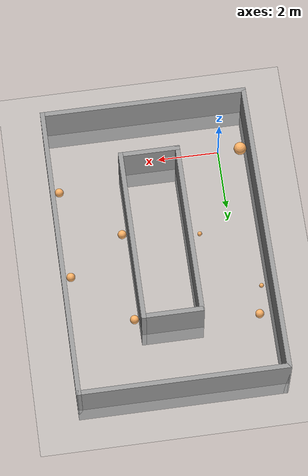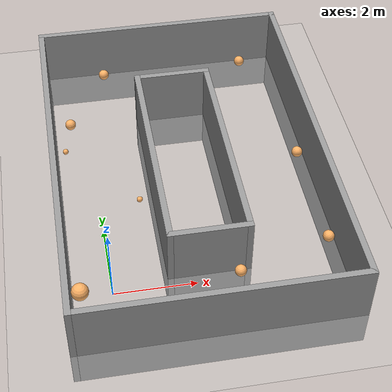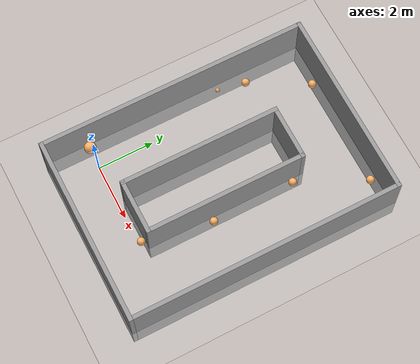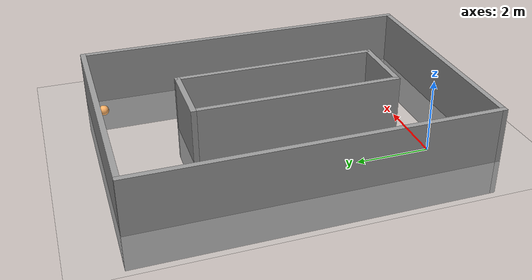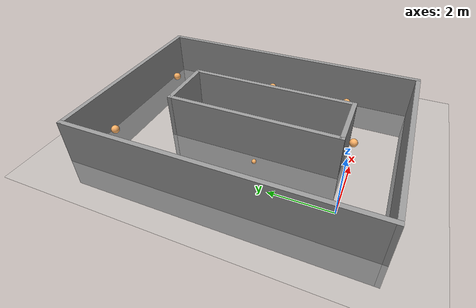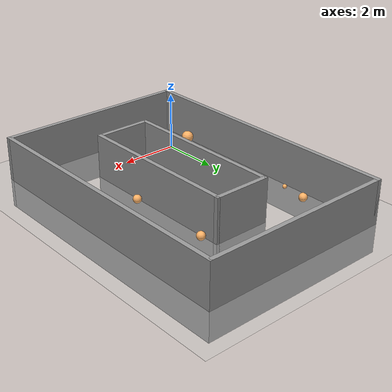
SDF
<sdf version="1.7">
 <world name="default">
  <light name="sun" type="directional">
   <pose>0 0 10 0 -0 0</pose>
   <diffuse>0.8 0.8 0.8 1</diffuse>
   <specular>0.2 0.2 0.2 1</specular>
   <attenuation>
    <range>1000</range>
    <constant>0.9</constant>
    <linear>0.01</linear>
    <quadratic>0.001</quadratic>
   </attenuation>
   <direction>-0.5 0.1 -0.9</direction>
   <spot><inner_angle>0</inner_angle><outer_angle>0</outer_angle><falloff>0</falloff></spot>
  </light>
  <model name="ground_plane">
   <static>1</static>
   <link name="link">
    <collision name="collision">
     <geometry><plane><normal>0 0 1</normal><size>100 100</size></plane></geometry>
     <surface>
      <contact><collide_bitmask>65535</collide_bitmask></contact>
      <friction><ode><mu>100</mu><mu2>50</mu2></ode></friction>
     </surface>
    </collision>
    <visual name="visual">
     <cast_shadows>0</cast_shadows>
     <geometry><plane><normal>0 0 1</normal><size>100 100</size></plane></geometry>
     <material>
      <script><uri>file://media/materials/scripts/gazebo.material</uri><name>Gazebo/Grey</name></script>
     </material>
    </visual>
   </link>
  </model>
  <gravity>0 0 -9.8</gravity>
  <magnetic_field>6e-06 2.3e-05 -4.2e-05</magnetic_field>
  <atmosphere type="adiabatic"/>
  <physics type="ode">
   <max_step_size>0.001</max_step_size>
   <real_time_factor>1</real_time_factor>
   <real_time_update_rate>1000</real_time_update_rate>
  </physics>
  <scene><ambient>0.4 0.4 0.4 1</ambient><background>0.7 0.7 0.7 1</background><shadows>1</shadows></scene>
  <spherical_coordinates>
   <surface_model>EARTH_WGS84</surface_model>
   <latitude_deg>0</latitude_deg>
   <longitude_deg>0</longitude_deg>
   <elevation>0</elevation>
   <heading_deg>0</heading_deg>
  </spherical_coordinates>
  <model name="task4_wall">
   <pose>2.28 3.35 -1 0 -0 0</pose>
   <link name="Wall_0">
    <collision name="Wall_0_Collision">
     <geometry><box><size>9.75 0.15 2.5</size></box></geometry>
     <pose>0 0 1.25 0 -0 0</pose>
    </collision>
    <visual name="Wall_0_Visual">
     <pose>0 0 1.25 0 -0 0</pose>
     <geometry><box><size>9.75 0.15 2.5</size></box></geometry>
     <material>
      <script><uri>file://media/materials/scripts/gazebo.material</uri><name>Gazebo/Grey</name></script>
      <ambient>1 1 1 1</ambient>
     </material>
     <meta><layer>0</layer></meta>
    </visual>
    <pose>-3.3 0 0 0 -0 1.5708</pose>
   </link>
   <link name="Wall_1">
    <collision name="Wall_1_Collision">
     <geometry><box><size>6.75 0.15 2.5</size></box></geometry>
     <pose>0 0 1.25 0 -0 0</pose>
    </collision>
    <visual name="Wall_1_Visual">
     <pose>0 0 1.25 0 -0 0</pose>
     <geometry><box><size>6.75 0.15 2.5</size></box></geometry>
     <material>
      <script><uri>file://media/materials/scripts/gazebo.material</uri><name>Gazebo/Grey</name></script>
      <ambient>1 1 1 1</ambient>
     </material>
     <meta><layer>0</layer></meta>
    </visual>
    <pose>-0 4.8 0 0 -0 0</pose>
   </link>
   <link name="Wall_2">
    <collision name="Wall_2_Collision">
     <geometry><box><size>9.75 0.15 2.5</size></box></geometry>
     <pose>0 0 1.25 0 -0 0</pose>
    </collision>
    <visual name="Wall_2_Visual">
     <pose>0 0 1.25 0 -0 0</pose>
     <geometry><box><size>9.75 0.15 2.5</size></box></geometry>
     <material>
      <script><uri>file://media/materials/scripts/gazebo.material</uri><name>Gazebo/Grey</name></script>
      <ambient>1 1 1 1</ambient>
     </material>
     <meta><layer>0</layer></meta>
    </visual>
    <pose>3.3 0 0 0 -0 -1.5708</pose>
   </link>
   <link name="Wall_3">
    <collision name="Wall_3_Collision">
     <geometry><box><size>6.75 0.15 2.5</size></box></geometry>
     <pose>0 0 1.25 0 -0 0</pose>
    </collision>
    <visual name="Wall_3_Visual">
     <pose>0 0 1.25 0 -0 0</pose>
     <geometry><box><size>6.75 0.15 2.5</size></box></geometry>
     <material>
      <script><uri>file://media/materials/scripts/gazebo.material</uri><name>Gazebo/Grey</name></script>
      <ambient>1 1 1 1</ambient>
     </material>
     <meta><layer>0</layer></meta>
    </visual>
    <pose>-0 -4.8 0 0 -0 3.14159</pose>
   </link>
   <link name="Wall_5">
    <collision name="Wall_5_Collision">
     <geometry><box><size>5.75 0.15 2.5</size></box></geometry>
     <pose>0 0 1.25 0 -0 0</pose>
    </collision>
    <visual name="Wall_5_Visual">
     <pose>0 0 1.25 0 -0 0</pose>
     <geometry><box><size>5.75 0.15 2.5</size></box></geometry>
     <material>
      <script><uri>file://media/materials/scripts/gazebo.material</uri><name>Gazebo/Grey</name></script>
      <ambient>1 1 1 1</ambient>
     </material>
     <meta><layer>0</layer></meta>
    </visual>
    <pose>-0.880514 -0.236952 0 0 -0 -1.5708</pose>
   </link>
   <link name="Wall_6">
    <collision name="Wall_6_Collision">
     <geometry><box><size>2 0.15 2.5</size></box></geometry>
     <pose>0 0 1.25 0 -0 0</pose>
    </collision>
    <visual name="Wall_6_Visual">
     <pose>0 0 1.25 0 -0 0</pose>
     <geometry><box><size>2 0.15 2.5</size></box></geometry>
     <material>
      <script><uri>file://media/materials/scripts/gazebo.material</uri><name>Gazebo/Grey</name></script>
      <ambient>1 1 1 1</ambient>
     </material>
     <meta><layer>0</layer></meta>
    </visual>
    <pose>0.044486 -3.03695 0 0 -0 0</pose>
   </link>
   <link name="Wall_7">
    <collision name="Wall_7_Collision">
     <geometry><box><size>5.75 0.15 2.5</size></box></geometry>
     <pose>0 0 1.25 0 -0 0</pose>
    </collision>
    <visual name="Wall_7_Visual">
     <pose>0 0 1.25 0 -0 0</pose>
     <geometry><box><size>5.75 0.15 2.5</size></box></geometry>
     <material>
      <script><uri>file://media/materials/scripts/gazebo.material</uri><name>Gazebo/Grey</name></script>
      <ambient>1 1 1 1</ambient>
     </material>
     <meta><layer>0</layer></meta>
    </visual>
    <pose>0.969486 -0.236952 0 0 -0 1.5708</pose>
   </link>
   <link name="Wall_8">
    <collision name="Wall_8_Collision">
     <geometry><box><size>2 0.15 2.5</size></box></geometry>
     <pose>0 0 1.25 0 -0 0</pose>
    </collision>
    <visual name="Wall_8_Visual">
     <pose>0 0 1.25 0 -0 0</pose>
     <geometry><box><size>2 0.15 2.5</size></box></geometry>
     <material>
      <script><uri>file://media/materials/scripts/gazebo.material</uri><name>Gazebo/Grey</name></script>
      <ambient>1 1 1 1</ambient>
     </material>
     <meta><layer>0</layer></meta>
    </visual>
    <pose>0.044486 2.56305 0 0 -0 3.14159</pose>
   </link>
   <static>1</static>
  </model>
  <model name="a_reall_ball02">
   <link name="link">
    <inertial>
     <mass>0.0445585</mass>
     <inertia>
      <ixx>9.78725e-05</ixx>
      <ixy>0</ixy>
      <ixz>0</ixz>
      <iyy>9.78725e-05</iyy>
      <iyz>0</iyz>
      <izz>9.78725e-05</izz>
     </inertia>
    </inertial>
    <pose>-0 -0 0.136953 0 -0 0</pose>
    <visual name="visual">
     <geometry><sphere><radius>0.0741029</radius></sphere></geometry>
     <material>
      <script><name>Gazebo/Grey</name><uri>file://media/materials/scripts/gazebo.material</uri></script>
      <shader type="pixel"><normal_map>__default__</normal_map></shader>
      <ambient>1 0.7 0.4 0</ambient>
      <diffuse>0.7 0.7 0.7 1</diffuse>
      <specular>0.01 0.01 0.01 1</specular>
      <emissive>0 0 0 1</emissive>
     </material>
    </visual>
    <collision name="collision">
     <geometry><sphere><radius>0.074103</radius></sphere></geometry>
     <surface>
      <friction>
       <ode><mu>1</mu><mu2>1</mu2><fdir1>0 0 0</fdir1><slip1>0</slip1><slip2>0</slip2></ode>
       <torsional>
        <coefficient>1</coefficient>
        <patch_radius>0</patch_radius>
        <surface_radius>0</surface_radius>
        <use_patch_radius>1</use_patch_radius>
        <ode><slip>0</slip></ode>
       </torsional>
      </friction>
      <bounce><restitution_coefficient>0</restitution_coefficient><threshold>1e+06</threshold></bounce>
      <contact>
       <collide_without_contact>0</collide_without_contact>
       <collide_without_contact_bitmask>1</collide_without_contact_bitmask>
       <collide_bitmask>1</collide_bitmask>
       <ode>
        <soft_cfm>0</soft_cfm>
        <soft_erp>0.2</soft_erp>
        <kp>1e+13</kp>
        <kd>1</kd>
        <max_vel>0.01</max_vel>
        <min_depth>0</min_depth>
       </ode>
       <bullet>
        <split_impulse>1</split_impulse>
        <split_impulse_penetration_threshold>-0.01</split_impulse_penetration_threshold>
        <soft_cfm>0</soft_cfm>
        <soft_erp>0.2</soft_erp>
        <kp>1e+13</kp>
        <kd>1</kd>
       </bullet>
      </contact>
     </surface>
    </collision>
   </link>
   <static>0</static>
   <pose>-0.70904 4.86688 -0.06285 0 -0 0</pose>
  </model>
  <model name="a_reall_ball">
   <link name="link">
    <inertial>
     <mass>0.318333</mass>
     <inertia>
      <ixx>0.00259372</ixx>
      <ixy>0</ixy>
      <ixz>0</ixz>
      <iyy>0.00259372</iyy>
      <iyz>0</iyz>
      <izz>0.00259372</izz>
     </inertia>
    </inertial>
    <pose>0 0 0.136953 0 -0 0</pose>
    <visual name="visual">
     <geometry><sphere><radius>0.142722</radius></sphere></geometry>
     <material>
      <script><name>Gazebo/Grey</name><uri>file://media/materials/scripts/gazebo.material</uri></script>
      <shader type="pixel"><normal_map>__default__</normal_map></shader>
      <ambient>1 0.7 0.4 0</ambient>
      <diffuse>0.7 0.7 0.7 1</diffuse>
      <specular>0.01 0.01 0.01 1</specular>
      <emissive>0 0 0 1</emissive>
     </material>
    </visual>
    <collision name="collision">
     <geometry><sphere><radius>0.142722</radius></sphere></geometry>
     <surface>
      <friction>
       <ode><mu>1</mu><mu2>1</mu2><fdir1>0 0 0</fdir1><slip1>0</slip1><slip2>0</slip2></ode>
       <torsional>
        <coefficient>1</coefficient>
        <patch_radius>0</patch_radius>
        <surface_radius>0</surface_radius>
        <use_patch_radius>1</use_patch_radius>
        <ode><slip>0</slip></ode>
       </torsional>
      </friction>
      <bounce><restitution_coefficient>0</restitution_coefficient><threshold>1e+06</threshold></bounce>
      <contact>
       <collide_without_contact>0</collide_without_contact>
       <collide_without_contact_bitmask>1</collide_without_contact_bitmask>
       <collide_bitmask>1</collide_bitmask>
       <ode>
        <soft_cfm>0</soft_cfm>
        <soft_erp>0.2</soft_erp>
        <kp>1e+13</kp>
        <kd>1</kd>
        <max_vel>0.01</max_vel>
        <min_depth>0</min_depth>
       </ode>
       <bullet>
        <split_impulse>1</split_impulse>
        <split_impulse_penetration_threshold>-0.01</split_impulse_penetration_threshold>
        <soft_cfm>0</soft_cfm>
        <soft_erp>0.2</soft_erp>
        <kp>1e+13</kp>
        <kd>1</kd>
       </bullet>
      </contact>
     </surface>
    </collision>
   </link>
   <static>0</static>
   <pose>-0.497662 5.83984 0.005769 0 -0 0</pose>
  </model>
  <model name="a_reall_ball_0">
   <link name="link">
    <inertial>
     <mass>0.318333</mass>
     <inertia>
      <ixx>0.00259372</ixx>
      <ixy>0</ixy>
      <ixz>0</ixz>
      <iyy>0.00259372</iyy>
      <iyz>0</iyz>
      <izz>0.00259372</izz>
     </inertia>
    </inertial>
    <pose>0 0 0.136953 0 -0 0</pose>
    <visual name="visual">
     <geometry><sphere><radius>0.142722</radius></sphere></geometry>
     <material>
      <script><name>Gazebo/Grey</name><uri>file://media/materials/scripts/gazebo.material</uri></script>
      <shader type="pixel"><normal_map>__default__</normal_map></shader>
      <ambient>1 0.7 0.4 0</ambient>
      <diffuse>0.7 0.7 0.7 1</diffuse>
      <specular>0.01 0.01 0.01 1</specular>
      <emissive>0 0 0 1</emissive>
     </material>
    </visual>
    <collision name="collision">
     <geometry><sphere><radius>0.142722</radius></sphere></geometry>
     <surface>
      <friction>
       <ode><mu>1</mu><mu2>1</mu2><fdir1>0 0 0</fdir1><slip1>0</slip1><slip2>0</slip2></ode>
       <torsional>
        <coefficient>1</coefficient>
        <patch_radius>0</patch_radius>
        <surface_radius>0</surface_radius>
        <use_patch_radius>1</use_patch_radius>
        <ode><slip>0</slip></ode>
       </torsional>
      </friction>
      <bounce><restitution_coefficient>0</restitution_coefficient><threshold>1e+06</threshold></bounce>
      <contact>
       <collide_without_contact>0</collide_without_contact>
       <collide_without_contact_bitmask>1</collide_without_contact_bitmask>
       <collide_bitmask>1</collide_bitmask>
       <ode>
        <soft_cfm>0</soft_cfm>
        <soft_erp>0.2</soft_erp>
        <kp>1e+13</kp>
        <kd>1</kd>
        <max_vel>0.01</max_vel>
        <min_depth>0</min_depth>
       </ode>
       <bullet>
        <split_impulse>1</split_impulse>
        <split_impulse_penetration_threshold>-0.01</split_impulse_penetration_threshold>
        <soft_cfm>0</soft_cfm>
        <soft_erp>0.2</soft_erp>
        <kp>1e+13</kp>
        <kd>1</kd>
       </bullet>
      </contact>
     </surface>
    </collision>
   </link>
   <static>0</static>
   <pose>0.61996 7.84886 0.005769 0 -0 0</pose>
  </model>
  <model name="a_reall_ball_1">
   <link name="link">
    <inertial>
     <mass>0.318333</mass>
     <inertia>
      <ixx>0.00259372</ixx>
      <ixy>0</ixy>
      <ixz>0</ixz>
      <iyy>0.00259372</iyy>
      <iyz>0</iyz>
      <izz>0.00259372</izz>
     </inertia>
    </inertial>
    <pose>0 0 0.136953 0 -0 0</pose>
    <visual name="visual">
     <geometry><sphere><radius>0.142722</radius></sphere></geometry>
     <material>
      <script><name>Gazebo/Grey</name><uri>file://media/materials/scripts/gazebo.material</uri></script>
      <shader type="pixel"><normal_map>__default__</normal_map></shader>
      <ambient>1 0.7 0.4 0</ambient>
      <diffuse>0.7 0.7 0.7 1</diffuse>
      <specular>0.01 0.01 0.01 1</specular>
      <emissive>0 0 0 1</emissive>
     </material>
    </visual>
    <collision name="collision">
     <geometry><sphere><radius>0.142722</radius></sphere></geometry>
     <surface>
      <friction>
       <ode><mu>1</mu><mu2>1</mu2><fdir1>0 0 0</fdir1><slip1>0</slip1><slip2>0</slip2></ode>
       <torsional>
        <coefficient>1</coefficient>
        <patch_radius>0</patch_radius>
        <surface_radius>0</surface_radius>
        <use_patch_radius>1</use_patch_radius>
        <ode><slip>0</slip></ode>
       </torsional>
      </friction>
      <bounce><restitution_coefficient>0</restitution_coefficient><threshold>1e+06</threshold></bounce>
      <contact>
       <collide_without_contact>0</collide_without_contact>
       <collide_without_contact_bitmask>1</collide_without_contact_bitmask>
       <collide_bitmask>1</collide_bitmask>
       <ode>
        <soft_cfm>0</soft_cfm>
        <soft_erp>0.2</soft_erp>
        <kp>1e+13</kp>
        <kd>1</kd>
        <max_vel>0.01</max_vel>
        <min_depth>0</min_depth>
       </ode>
       <bullet>
        <split_impulse>1</split_impulse>
        <split_impulse_penetration_threshold>-0.01</split_impulse_penetration_threshold>
        <soft_cfm>0</soft_cfm>
        <soft_erp>0.2</soft_erp>
        <kp>1e+13</kp>
        <kd>1</kd>
       </bullet>
      </contact>
     </surface>
    </collision>
   </link>
   <static>0</static>
   <pose>4.62242 7.83557 0.005769 0 -0 0</pose>
  </model>
  <model name="a_reall_ball_2">
   <link name="link">
    <inertial>
     <mass>0.318333</mass>
     <inertia>
      <ixx>0.00259372</ixx>
      <ixy>0</ixy>
      <ixz>0</ixz>
      <iyy>0.00259372</iyy>
      <iyz>0</iyz>
      <izz>0.00259372</izz>
     </inertia>
    </inertial>
    <pose>0 0 0.136953 0 -0 0</pose>
    <visual name="visual">
     <geometry><sphere><radius>0.142722</radius></sphere></geometry>
     <material>
      <script><name>Gazebo/Grey</name><uri>file://media/materials/scripts/gazebo.material</uri></script>
      <shader type="pixel"><normal_map>__default__</normal_map></shader>
      <ambient>1 0.7 0.4 0</ambient>
      <diffuse>0.7 0.7 0.7 1</diffuse>
      <specular>0.01 0.01 0.01 1</specular>
      <emissive>0 0 0 1</emissive>
     </material>
    </visual>
    <collision name="collision">
     <geometry><sphere><radius>0.142722</radius></sphere></geometry>
     <surface>
      <friction>
       <ode><mu>1</mu><mu2>1</mu2><fdir1>0 0 0</fdir1><slip1>0</slip1><slip2>0</slip2></ode>
       <torsional>
        <coefficient>1</coefficient>
        <patch_radius>0</patch_radius>
        <surface_radius>0</surface_radius>
        <use_patch_radius>1</use_patch_radius>
        <ode><slip>0</slip></ode>
       </torsional>
      </friction>
      <bounce><restitution_coefficient>0</restitution_coefficient><threshold>1e+06</threshold></bounce>
      <contact>
       <collide_without_contact>0</collide_without_contact>
       <collide_without_contact_bitmask>1</collide_without_contact_bitmask>
       <collide_bitmask>1</collide_bitmask>
       <ode>
        <soft_cfm>0</soft_cfm>
        <soft_erp>0.2</soft_erp>
        <kp>1e+13</kp>
        <kd>1</kd>
        <max_vel>0.01</max_vel>
        <min_depth>0</min_depth>
       </ode>
       <bullet>
        <split_impulse>1</split_impulse>
        <split_impulse_penetration_threshold>-0.01</split_impulse_penetration_threshold>
        <soft_cfm>0</soft_cfm>
        <soft_erp>0.2</soft_erp>
        <kp>1e+13</kp>
        <kd>1</kd>
       </bullet>
      </contact>
     </surface>
    </collision>
   </link>
   <static>0</static>
   <pose>3.4957 5.49774 0.005769 0 -0 0</pose>
  </model>
  <model name="a_reall_ball_3">
   <link name="link">
    <inertial>
     <mass>0.318333</mass>
     <inertia>
      <ixx>0.00259372</ixx>
      <ixy>0</ixy>
      <ixz>0</ixz>
      <iyy>0.00259372</iyy>
      <iyz>0</iyz>
      <izz>0.00259372</izz>
     </inertia>
    </inertial>
    <pose>0 0 0.136953 0 -0 0</pose>
    <visual name="visual">
     <geometry><sphere><radius>0.142722</radius></sphere></geometry>
     <material>
      <script><name>Gazebo/Grey</name><uri>file://media/materials/scripts/gazebo.material</uri></script>
      <shader type="pixel"><normal_map>__default__</normal_map></shader>
      <ambient>1 0.7 0.4 0</ambient>
      <diffuse>0.7 0.7 0.7 1</diffuse>
      <specular>0.01 0.01 0.01 1</specular>
      <emissive>0 0 0 1</emissive>
     </material>
    </visual>
    <collision name="collision">
     <geometry><sphere><radius>0.142722</radius></sphere></geometry>
     <surface>
      <friction>
       <ode><mu>1</mu><mu2>1</mu2><fdir1>0 0 0</fdir1><slip1>0</slip1><slip2>0</slip2></ode>
       <torsional>
        <coefficient>1</coefficient>
        <patch_radius>0</patch_radius>
        <surface_radius>0</surface_radius>
        <use_patch_radius>1</use_patch_radius>
        <ode><slip>0</slip></ode>
       </torsional>
      </friction>
      <bounce><restitution_coefficient>0</restitution_coefficient><threshold>1e+06</threshold></bounce>
      <contact>
       <collide_without_contact>0</collide_without_contact>
       <collide_without_contact_bitmask>1</collide_without_contact_bitmask>
       <collide_bitmask>1</collide_bitmask>
       <ode>
        <soft_cfm>0</soft_cfm>
        <soft_erp>0.2</soft_erp>
        <kp>1e+13</kp>
        <kd>1</kd>
        <max_vel>0.01</max_vel>
        <min_depth>0</min_depth>
       </ode>
       <bullet>
        <split_impulse>1</split_impulse>
        <split_impulse_penetration_threshold>-0.01</split_impulse_penetration_threshold>
        <soft_cfm>0</soft_cfm>
        <soft_erp>0.2</soft_erp>
        <kp>1e+13</kp>
        <kd>1</kd>
       </bullet>
      </contact>
     </surface>
    </collision>
   </link>
   <static>0</static>
   <pose>5.33714 3.78014 0.005769 0 -0 0</pose>
  </model>
  <model name="a_reall_ball_4">
   <link name="link">
    <inertial>
     <mass>0.318333</mass>
     <inertia>
      <ixx>0.00259372</ixx>
      <ixy>0</ixy>
      <ixz>0</ixz>
      <iyy>0.00259372</iyy>
      <iyz>0</iyz>
      <izz>0.00259372</izz>
     </inertia>
    </inertial>
    <pose>0 0 0.136953 0 -0 0</pose>
    <visual name="visual">
     <geometry><sphere><radius>0.142722</radius></sphere></geometry>
     <material>
      <script><name>Gazebo/Grey</name><uri>file://media/materials/scripts/gazebo.material</uri></script>
      <shader type="pixel"><normal_map>__default__</normal_map></shader>
      <ambient>1 0.7 0.4 0</ambient>
      <diffuse>0.7 0.7 0.7 1</diffuse>
      <specular>0.01 0.01 0.01 1</specular>
      <emissive>0 0 0 1</emissive>
     </material>
    </visual>
    <collision name="collision">
     <geometry><sphere><radius>0.142722</radius></sphere></geometry>
     <surface>
      <friction>
       <ode><mu>1</mu><mu2>1</mu2><fdir1>0 0 0</fdir1><slip1>0</slip1><slip2>0</slip2></ode>
       <torsional>
        <coefficient>1</coefficient>
        <patch_radius>0</patch_radius>
        <surface_radius>0</surface_radius>
        <use_patch_radius>1</use_patch_radius>
        <ode><slip>0</slip></ode>
       </torsional>
      </friction>
      <bounce><restitution_coefficient>0</restitution_coefficient><threshold>1e+06</threshold></bounce>
      <contact>
       <collide_without_contact>0</collide_without_contact>
       <collide_without_contact_bitmask>1</collide_without_contact_bitmask>
       <collide_bitmask>1</collide_bitmask>
       <ode>
        <soft_cfm>0</soft_cfm>
        <soft_erp>0.2</soft_erp>
        <kp>1e+13</kp>
        <kd>1</kd>
        <max_vel>0.01</max_vel>
        <min_depth>0</min_depth>
       </ode>
       <bullet>
        <split_impulse>1</split_impulse>
        <split_impulse_penetration_threshold>-0.01</split_impulse_penetration_threshold>
        <soft_cfm>0</soft_cfm>
        <soft_erp>0.2</soft_erp>
        <kp>1e+13</kp>
        <kd>1</kd>
       </bullet>
      </contact>
     </surface>
    </collision>
   </link>
   <static>0</static>
   <pose>3.50836 2.52737 0.005769 0 -0 0</pose>
  </model>
  <model name="a_reall_ball_5">
   <link name="link">
    <inertial>
     <mass>0.318333</mass>
     <inertia>
      <ixx>0.00259372</ixx>
      <ixy>0</ixy>
      <ixz>0</ixz>
      <iyy>0.00259372</iyy>
      <iyz>0</iyz>
      <izz>0.00259372</izz>
     </inertia>
    </inertial>
    <pose>0 0 0.136953 0 -0 0</pose>
    <visual name="visual">
     <geometry><sphere><radius>0.142722</radius></sphere></geometry>
     <material>
      <script><name>Gazebo/Grey</name><uri>file://media/materials/scripts/gazebo.material</uri></script>
      <shader type="pixel"><normal_map>__default__</normal_map></shader>
      <ambient>1 0.7 0.4 0</ambient>
      <diffuse>0.7 0.7 0.7 1</diffuse>
      <specular>0.01 0.01 0.01 1</specular>
      <emissive>0 0 0 1</emissive>
     </material>
    </visual>
    <collision name="collision">
     <geometry><sphere><radius>0.142722</radius></sphere></geometry>
     <surface>
      <friction>
       <ode><mu>1</mu><mu2>1</mu2><fdir1>0 0 0</fdir1><slip1>0</slip1><slip2>0</slip2></ode>
       <torsional>
        <coefficient>1</coefficient>
        <patch_radius>0</patch_radius>
        <surface_radius>0</surface_radius>
        <use_patch_radius>1</use_patch_radius>
        <ode><slip>0</slip></ode>
       </torsional>
      </friction>
      <bounce><restitution_coefficient>0</restitution_coefficient><threshold>1e+06</threshold></bounce>
      <contact>
       <collide_without_contact>0</collide_without_contact>
       <collide_without_contact_bitmask>1</collide_without_contact_bitmask>
       <collide_bitmask>1</collide_bitmask>
       <ode>
        <soft_cfm>0</soft_cfm>
        <soft_erp>0.2</soft_erp>
        <kp>1e+13</kp>
        <kd>1</kd>
        <max_vel>0.01</max_vel>
        <min_depth>0</min_depth>
       </ode>
       <bullet>
        <split_impulse>1</split_impulse>
        <split_impulse_penetration_threshold>-0.01</split_impulse_penetration_threshold>
        <soft_cfm>0</soft_cfm>
        <soft_erp>0.2</soft_erp>
        <kp>1e+13</kp>
        <kd>1</kd>
       </bullet>
      </contact>
     </surface>
    </collision>
   </link>
   <static>0</static>
   <pose>5.40635 0.785981 0.016787 -2e-06 -0.403864 -0</pose>
  </model>
  <model name="a_reall_ball_6">
   <link name="link">
    <inertial>
     <mass>0.318333</mass>
     <inertia>
      <ixx>0.00259372</ixx>
      <ixy>0</ixy>
      <ixz>0</ixz>
      <iyy>0.00259372</iyy>
      <iyz>0</iyz>
      <izz>0.00259372</izz>
     </inertia>
    </inertial>
    <pose>0 0 0.136953 0 -0 0</pose>
    <visual name="visual">
     <geometry><sphere><radius>0.142722</radius></sphere></geometry>
     <material>
      <script><name>Gazebo/Grey</name><uri>file://media/materials/scripts/gazebo.material</uri></script>
      <shader type="pixel"><normal_map>__default__</normal_map></shader>
      <ambient>1 0.7 0.4 0</ambient>
      <diffuse>0.7 0.7 0.7 1</diffuse>
      <specular>0.01 0.01 0.01 1</specular>
      <emissive>0 0 0 1</emissive>
     </material>
    </visual>
    <collision name="collision">
     <geometry><sphere><radius>0.142722</radius></sphere></geometry>
     <surface>
      <friction>
       <ode><mu>1</mu><mu2>1</mu2><fdir1>0 0 0</fdir1><slip1>0</slip1><slip2>0</slip2></ode>
       <torsional>
        <coefficient>1</coefficient>
        <patch_radius>0</patch_radius>
        <surface_radius>0</surface_radius>
        <use_patch_radius>1</use_patch_radius>
        <ode><slip>0</slip></ode>
       </torsional>
      </friction>
      <bounce><restitution_coefficient>0</restitution_coefficient><threshold>1e+06</threshold></bounce>
      <contact>
       <collide_without_contact>0</collide_without_contact>
       <collide_without_contact_bitmask>1</collide_without_contact_bitmask>
       <collide_bitmask>1</collide_bitmask>
       <ode>
        <soft_cfm>0</soft_cfm>
        <soft_erp>0.2</soft_erp>
        <kp>1e+13</kp>
        <kd>1</kd>
        <max_vel>0.01</max_vel>
        <min_depth>0</min_depth>
       </ode>
       <bullet>
        <split_impulse>1</split_impulse>
        <split_impulse_penetration_threshold>-0.01</split_impulse_penetration_threshold>
        <soft_cfm>0</soft_cfm>
        <soft_erp>0.2</soft_erp>
        <kp>1e+13</kp>
        <kd>1</kd>
       </bullet>
      </contact>
     </surface>
    </collision>
   </link>
   <static>0</static>
   <pose>3.03344 0.092016 0.005769 0 -0 0</pose>
  </model>
  <model name="ball2_clone_clone_0">
   <link name="link">
    <inertial>
     <mass>1</mass>
     <inertia><ixx>0.1</ixx><ixy>0</ixy><ixz>0</ixz><iyy>0.1</iyy><iyz>0</iyz><izz>0.1</izz></inertia>
    </inertial>
    <visual name="visual">
     <geometry><sphere><radius>0.209021</radius></sphere></geometry>
     <material>
      <script><name>Gazebo/Grey</name><uri>file://media/materials/scripts/gazebo.material</uri></script>
      <shader type="pixel"><normal_map>__default__</normal_map></shader>
      <ambient>1 0.7 0.4 0</ambient>
      <diffuse>0.7 0.7 0.7 1</diffuse>
      <specular>0.01 0.01 0.01 1</specular>
      <emissive>0 0 0 1</emissive>
     </material>
    </visual>
    <collision name="collision">
     <geometry><sphere><radius>0.209021</radius></sphere></geometry>
     <surface>
      <friction>
       <ode><mu>1</mu><mu2>1</mu2><fdir1>0 0 0</fdir1><slip1>0</slip1><slip2>0</slip2></ode>
       <torsional>
        <coefficient>1</coefficient>
        <patch_radius>0</patch_radius>
        <surface_radius>0</surface_radius>
        <use_patch_radius>1</use_patch_radius>
        <ode><slip>0</slip></ode>
       </torsional>
      </friction>
      <bounce><restitution_coefficient>0</restitution_coefficient><threshold>1e+06</threshold></bounce>
      <contact>
       <collide_without_contact>0</collide_without_contact>
       <collide_without_contact_bitmask>1</collide_without_contact_bitmask>
       <collide_bitmask>1</collide_bitmask>
       <ode>
        <soft_cfm>0</soft_cfm>
        <soft_erp>0.2</soft_erp>
        <kp>1e+13</kp>
        <kd>1</kd>
        <max_vel>0.01</max_vel>
        <min_depth>0</min_depth>
       </ode>
       <bullet>
        <split_impulse>1</split_impulse>
        <split_impulse_penetration_threshold>-0.01</split_impulse_penetration_threshold>
        <soft_cfm>0</soft_cfm>
        <soft_erp>0.2</soft_erp>
        <kp>1e+13</kp>
        <kd>1</kd>
       </bullet>
      </contact>
     </surface>
    </collision>
   </link>
   <static>0</static>
   <pose>-0.733456 0.040567 0.209021 0 0.017917 0</pose>
  </model>
  <model name="a_reall_ball02_0">
   <link name="link">
    <inertial>
     <mass>0.0445585</mass>
     <inertia>
      <ixx>9.78725e-05</ixx>
      <ixy>0</ixy>
      <ixz>0</ixz>
      <iyy>9.78725e-05</iyy>
      <iyz>0</iyz>
      <izz>9.78725e-05</izz>
     </inertia>
    </inertial>
    <pose>-0 -0 0.136953 0 -0 0</pose>
    <visual name="visual">
     <geometry><sphere><radius>0.0741029</radius></sphere></geometry>
     <material>
      <script><name>Gazebo/Grey</name><uri>file://media/materials/scripts/gazebo.material</uri></script>
      <shader type="pixel"><normal_map>__default__</normal_map></shader>
      <ambient>1 0.7 0.4 0</ambient>
      <diffuse>0.7 0.7 0.7 1</diffuse>
      <specular>0.01 0.01 0.01 1</specular>
      <emissive>0 0 0 1</emissive>
     </material>
    </visual>
    <collision name="collision">
     <geometry><sphere><radius>0.074103</radius></sphere></geometry>
     <surface>
      <friction>
       <ode><mu>1</mu><mu2>1</mu2><fdir1>0 0 0</fdir1><slip1>0</slip1><slip2>0</slip2></ode>
       <torsional>
        <coefficient>1</coefficient>
        <patch_radius>0</patch_radius>
        <surface_radius>0</surface_radius>
        <use_patch_radius>1</use_patch_radius>
        <ode><slip>0</slip></ode>
       </torsional>
      </friction>
      <bounce><restitution_coefficient>0</restitution_coefficient><threshold>1e+06</threshold></bounce>
      <contact>
       <collide_without_contact>0</collide_without_contact>
       <collide_without_contact_bitmask>1</collide_without_contact_bitmask>
       <collide_bitmask>1</collide_bitmask>
       <ode>
        <soft_cfm>0</soft_cfm>
        <soft_erp>0.2</soft_erp>
        <kp>1e+13</kp>
        <kd>1</kd>
        <max_vel>0.01</max_vel>
        <min_depth>0</min_depth>
       </ode>
       <bullet>
        <split_impulse>1</split_impulse>
        <split_impulse_penetration_threshold>-0.01</split_impulse_penetration_threshold>
        <soft_cfm>0</soft_cfm>
        <soft_erp>0.2</soft_erp>
        <kp>1e+13</kp>
        <kd>1</kd>
       </bullet>
      </contact>
     </surface>
    </collision>
   </link>
   <static>0</static>
   <pose>1.007 2.8148 -0.06285 0 -0 0</pose>
  </model>
 </world>
</sdf>
